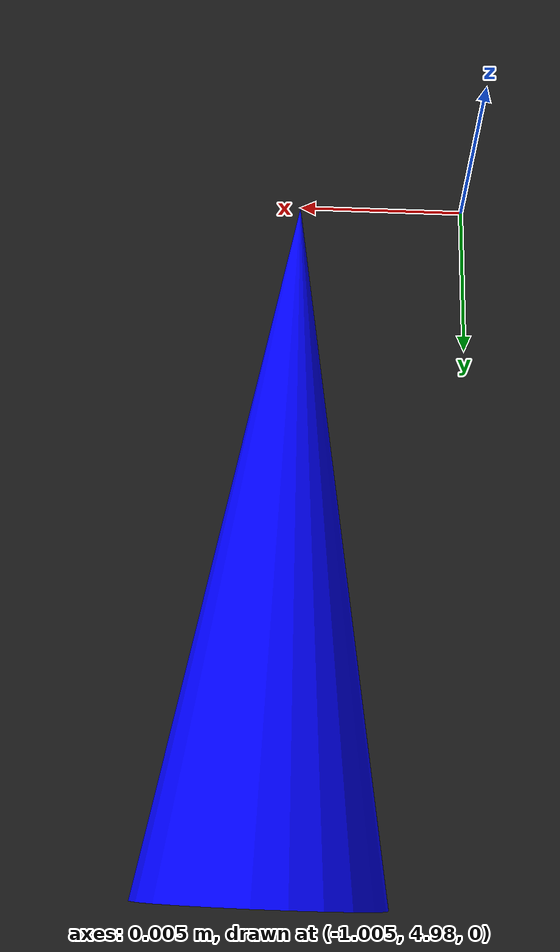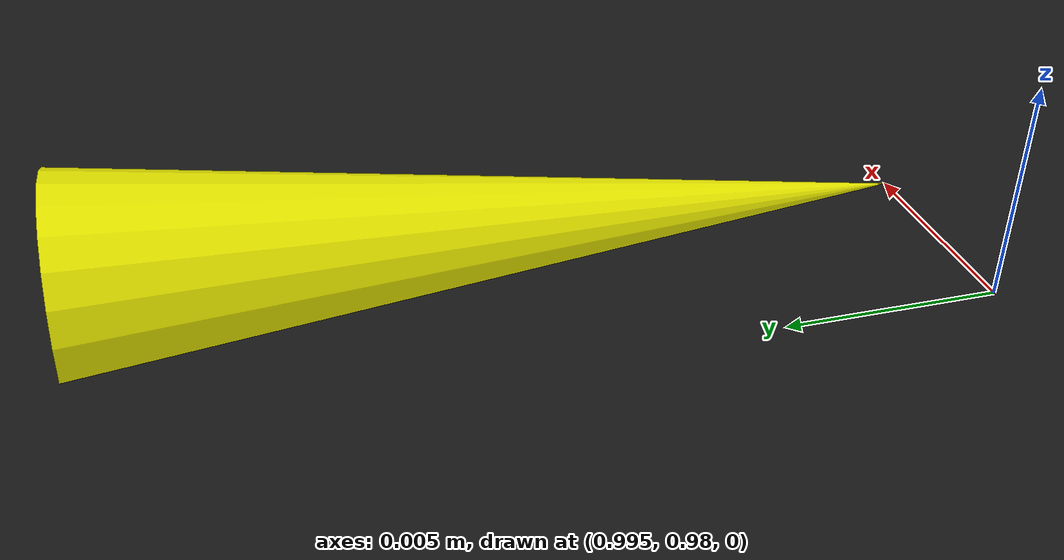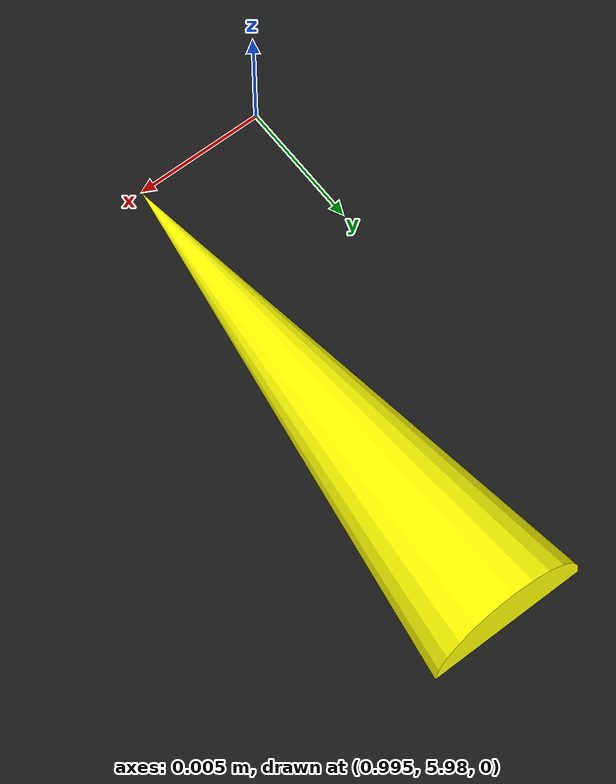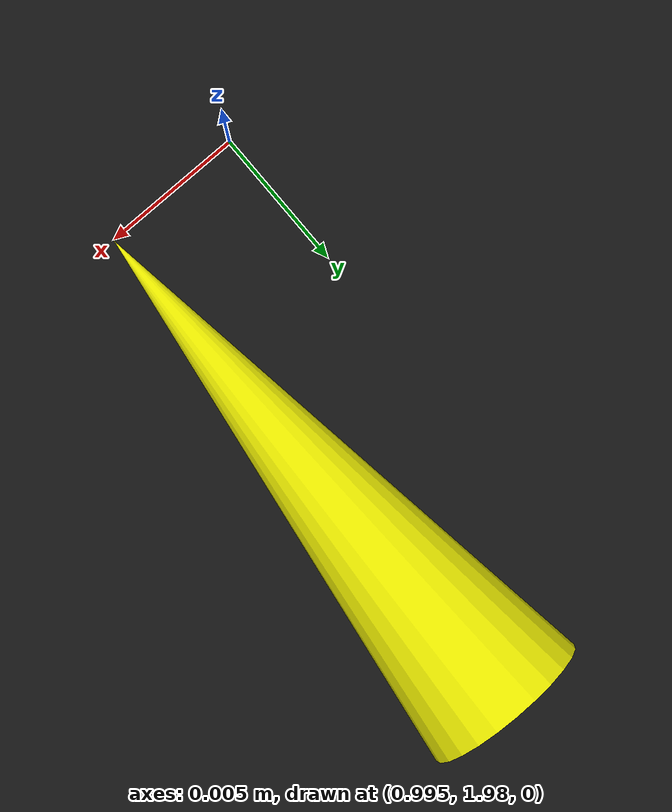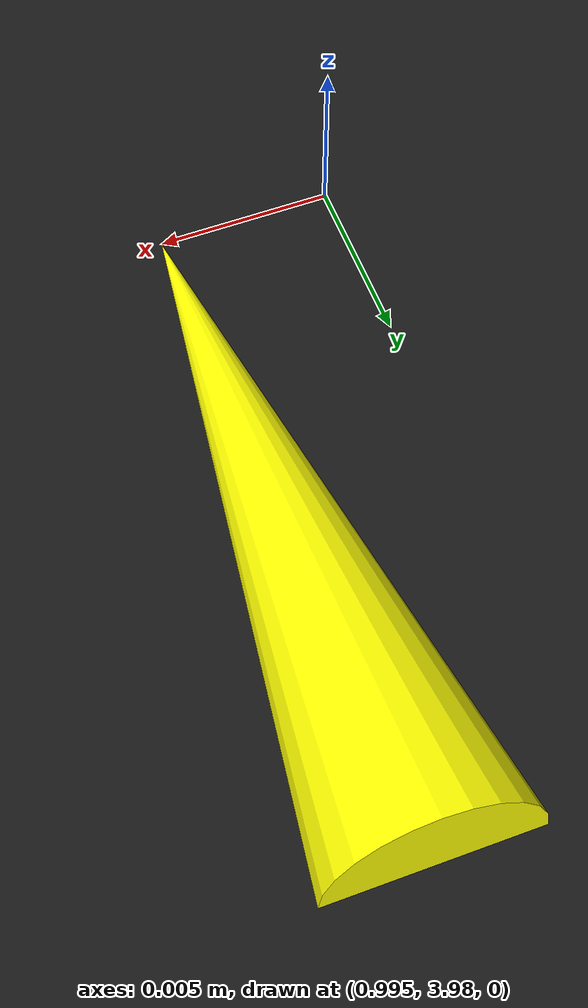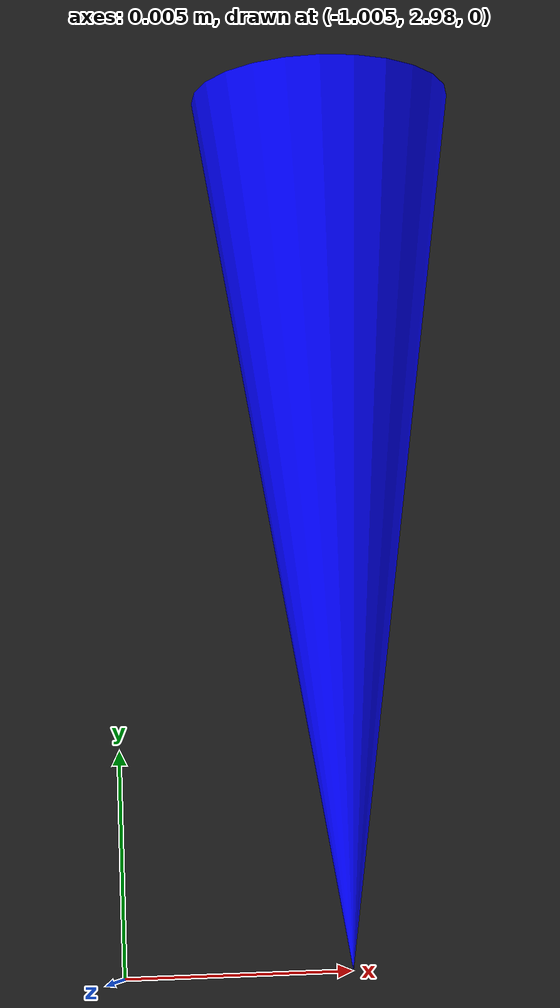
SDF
<?xml version="1.0"?>
  <sdf version='1.9'>
   <world name='track'>

        <!-- PHYSICS -->
        <physics name="1ms" type="ignored">
            <max_step_size>0.001</max_step_size>
            <real_time_factor>1.0</real_time_factor>
        </physics>

        <gravity>0 0 -9.8</gravity>
        <magnetic_field>6e-06 2.3e-05 -4.2e-05</magnetic_field>
        <atmosphere type='adiabatic'/>

        <!-- PLUGINS -->
        <plugin name='gz::sim::systems::Physics' filename='gz-sim-physics-system'/>
        <plugin name='gz::sim::systems::UserCommands' filename='gz-sim-user-commands-system'/>
        <plugin name='gz::sim::systems::SceneBroadcaster' filename='gz-sim-scene-broadcaster-system'/>

        <gui fullscreen='0'>
            <!-- 3D scene -->
            <plugin filename="MinimalScene" name="3D View">
                <gz-gui>
                <title>3D View</title>
                <property type="bool" key="showTitleBar">false</property>
                <property type="string" key="state">docked</property>
                </gz-gui>

                <engine>ogre2</engine>
                <scene>scene</scene>
                <ambient_light>0.4 0.4 0.4</ambient_light>
                <background_color>0.8 0.8 0.8</background_color>
                <camera_pose>-6 0 6 0 0.5 0</camera_pose>
            </plugin>

            <!-- Plugins that add functionality to the scene -->
            <plugin filename="EntityContextMenuPlugin" name="Entity context menu">
                <gz-gui>
                <property key="state" type="string">floating</property>
                <property key="width" type="double">5</property>
                <property key="height" type="double">5</property>
                <property key="showTitleBar" type="bool">false</property>
                </gz-gui>
            </plugin>
            <plugin filename="GzSceneManager" name="Scene Manager">
                <gz-gui>
                <property key="resizable" type="bool">false</property>
                <property key="width" type="double">5</property>
                <property key="height" type="double">5</property>
                <property key="state" type="string">floating</property>
                <property key="showTitleBar" type="bool">false</property>
                </gz-gui>
            </plugin>
            <plugin filename="InteractiveViewControl" name="Interactive view control">
                <gz-gui>
                <property key="resizable" type="bool">false</property>
                <property key="width" type="double">5</property>
                <property key="height" type="double">5</property>
                <property key="state" type="string">floating</property>
                <property key="showTitleBar" type="bool">false</property>
                </gz-gui>
            </plugin>
            <plugin filename="CameraTracking" name="Camera Tracking">
                <gz-gui>
                <property key="resizable" type="bool">false</property>
                <property key="width" type="double">5</property>
                <property key="height" type="double">5</property>
                <property key="state" type="string">floating</property>
                <property key="showTitleBar" type="bool">false</property>
                </gz-gui>
            </plugin>
            <plugin name='World control' filename='WorldControl'>
                <gz-gui>
                    <title>World control</title>
                    <property type='bool' key='showTitleBar'>0</property>
                    <property type='bool' key='resizable'>0</property>
                    <property type='double' key='height'>72</property>
                    <property type='double' key='z'>1</property>
                    <property type='string' key='state'>floating</property>
                    <anchors target='3D View'>
                        <line own='left' target='left'/>
                        <line own='bottom' target='bottom'/>
                    </anchors>
                </gz-gui>
                <play_pause>1</play_pause>
                <step>1</step>
                <start_paused>1</start_paused>
            </plugin>
            <plugin name='World stats' filename='WorldStats'>
                <gz-gui>
                    <title>World stats</title>
                    <property type='bool' key='showTitleBar'>0</property>
                    <property type='bool' key='resizable'>0</property>
                    <property type='double' key='height'>110</property>
                    <property type='double' key='width'>290</property>
                    <property type='double' key='z'>1</property>
                    <property type='string' key='state'>floating</property>
                    <anchors target='3D View'>
                        <line own='right' target='right'/>
                        <line own='bottom' target='bottom'/>
                    </anchors>
                </gz-gui>
                <sim_time>1</sim_time>
                <real_time>1</real_time>
                <real_time_factor>1</real_time_factor>
                <iterations>1</iterations>
            </plugin>

            <plugin filename="VisualizeLidar" name="Visualize Lidar">
            </plugin>

            <plugin filename="ImageDisplay" name="Image Display">
            </plugin>

            <!-- Inspector -->
            <plugin filename="ComponentInspector" name="Component inspector">
                <ignition-gui>
                <property type="string" key="state">docked</property>
                </ignition-gui>
            </plugin>

            <!-- Entity tree -->
            <plugin filename="EntityTree" name="Entity tree">
                <ignition-gui>
                <property type="string" key="state">docked</property>
                </ignition-gui>
            </plugin>
        </gui>

        <!-- SENSORS -->

        <plugin
        filename="gz-sim-sensors-system"
        name="gz::sim::systems::Sensors">
        <render_engine>ogre2</render_engine>
        </plugin>

        <!-- AMBIENT -->

        <scene>
            <ambient>1 1 1 1</ambient>
            <background>0.8 0.8 0.8 1</background>
            <shadows>1</shadows>
        </scene>
        <light name='sun' type='directional'>
            <cast_shadows>1</cast_shadows>
            <pose>0 0 10 0 0 0</pose>
            <diffuse>0.8 0.8 0.8 1</diffuse>
            <specular>0.8 0.8 0.8 1</specular>
            <attenuation>
                <range>1000</range>
                <constant>0.9</constant>
                <linear>0.01</linear>
                <quadratic>0.001</quadratic>
            </attenuation>
            <direction>-0.5 0.1 -0.9</direction>
        </light>

        <model name='ground_plane'>
            <static>true</static>
            <link name='link'>
                <collision name='collision'>
                    <geometry>
                        <plane>
                        <normal>0 0 1</normal>
                        <size>100 100</size>
                        </plane>
                    </geometry>

                    <surface>
                        <friction>
                            <dart/>
                        </friction>
                        <bounce/>
                        <contact/>
                    </surface>
                </collision>

                <visual name='visual'>
                    <geometry>
                        <plane>
                        <normal>0 0 1</normal>
                        <size>100 100</size>
                        </plane>
                    </geometry>
                    <material>
                        <ambient>0.1 0.1 0.1 1</ambient>
                        <diffuse>0.1 0.1 0.1 1</diffuse>
                        <specular>0.8 0.8 0.8 1</specular>
                    </material>
                </visual>

                <pose>0 0 0 0 -0 0</pose>

                <inertial>
                    <pose>0 0 0 0 -0 0</pose>
                    <mass>1</mass>
                    <inertia>
                        <ixx>1</ixx>
                        <ixy>0</ixy>
                        <ixz>0</ixz>
                        <iyy>1</iyy>
                        <iyz>0</iyz>
                        <izz>1</izz>
                    </inertia>
                </inertial>

                <enable_wind>false</enable_wind>

            </link>

            <pose>0 0 0 0 -0 0</pose>

            <self_collide>false</self_collide>
        </model>
     <model name='cone_0'>
      <link name='cone_0_link'>
        <inertial>
			<mass>0</mass>
			<inertia>
			<ixx>0.166667</ixx>
			<ixy>0</ixy>
			<ixz>0</ixz>
			<iyy>0.166667</iyy>
			<iyz>0</iyz>
			<izz>0.166667</izz>
			</inertia>
		</inertial>
        <collision name='cone_0_collision'>
          <geometry>
            <mesh>
              <uri>/models/cone/meshes/cone.stl</uri>
              <scale>0.001 0.001 0.001</scale>
            </mesh>
          </geometry>
        </collision>
        <visual name='cone_0_visual'>
          <geometry>
            <mesh>
              <uri>/models/cone/meshes/cone.stl</uri>
              <scale>0.001 0.001 0.001</scale>
            </mesh>
          </geometry>
          <material>
            <ambient>1 1 0 1</ambient>
            <diffuse>1 1 0 1</diffuse>
            <specular>1 1 0 1</specular>
          </material>
        </visual>

        <enable_wind>false</enable_wind>
      </link>
      <pose>1 0 0.0 1.57 0 0</pose>
      <static>true</static>
      </model>

     <model name='cone_1'>
      <link name='cone_1_link'>
        <inertial>
			<mass>0</mass>
			<inertia>
			<ixx>0.166667</ixx>
			<ixy>0</ixy>
			<ixz>0</ixz>
			<iyy>0.166667</iyy>
			<iyz>0</iyz>
			<izz>0.166667</izz>
			</inertia>
		</inertial>
        <collision name='cone_1_collision'>
          <geometry>
            <mesh>
              <uri>/models/cone/meshes/cone.stl</uri>
              <scale>0.001 0.001 0.001</scale>
            </mesh>
          </geometry>
        </collision>
        <visual name='cone_1_visual'>
          <geometry>
            <mesh>
              <uri>/models/cone/meshes/cone.stl</uri>
              <scale>0.001 0.001 0.001</scale>
            </mesh>
          </geometry>
          <material>
            <ambient>1 1 0 1</ambient>
            <diffuse>1 1 0 1</diffuse>
            <specular>1 1 0 1</specular>
          </material>
        </visual>

        <enable_wind>false</enable_wind>
      </link>
      <pose>1 1 0.0 1.57 0 0</pose>
      <static>true</static>
      </model>

     <model name='cone_2'>
      <link name='cone_2_link'>
        <inertial>
			<mass>0</mass>
			<inertia>
			<ixx>0.166667</ixx>
			<ixy>0</ixy>
			<ixz>0</ixz>
			<iyy>0.166667</iyy>
			<iyz>0</iyz>
			<izz>0.166667</izz>
			</inertia>
		</inertial>
        <collision name='cone_2_collision'>
          <geometry>
            <mesh>
              <uri>/models/cone/meshes/cone.stl</uri>
              <scale>0.001 0.001 0.001</scale>
            </mesh>
          </geometry>
        </collision>
        <visual name='cone_2_visual'>
          <geometry>
            <mesh>
              <uri>/models/cone/meshes/cone.stl</uri>
              <scale>0.001 0.001 0.001</scale>
            </mesh>
          </geometry>
          <material>
            <ambient>1 1 0 1</ambient>
            <diffuse>1 1 0 1</diffuse>
            <specular>1 1 0 1</specular>
          </material>
        </visual>

        <enable_wind>false</enable_wind>
      </link>
      <pose>1 2 0.0 1.57 0 0</pose>
      <static>true</static>
      </model>

     <model name='cone_3'>
      <link name='cone_3_link'>
        <inertial>
			<mass>0</mass>
			<inertia>
			<ixx>0.166667</ixx>
			<ixy>0</ixy>
			<ixz>0</ixz>
			<iyy>0.166667</iyy>
			<iyz>0</iyz>
			<izz>0.166667</izz>
			</inertia>
		</inertial>
        <collision name='cone_3_collision'>
          <geometry>
            <mesh>
              <uri>/models/cone/meshes/cone.stl</uri>
              <scale>0.001 0.001 0.001</scale>
            </mesh>
          </geometry>
        </collision>
        <visual name='cone_3_visual'>
          <geometry>
            <mesh>
              <uri>/models/cone/meshes/cone.stl</uri>
              <scale>0.001 0.001 0.001</scale>
            </mesh>
          </geometry>
          <material>
            <ambient>1 1 0 1</ambient>
            <diffuse>1 1 0 1</diffuse>
            <specular>1 1 0 1</specular>
          </material>
        </visual>

        <enable_wind>false</enable_wind>
      </link>
      <pose>1 3 0.0 1.57 0 0</pose>
      <static>true</static>
      </model>

     <model name='cone_4'>
      <link name='cone_4_link'>
        <inertial>
			<mass>0</mass>
			<inertia>
			<ixx>0.166667</ixx>
			<ixy>0</ixy>
			<ixz>0</ixz>
			<iyy>0.166667</iyy>
			<iyz>0</iyz>
			<izz>0.166667</izz>
			</inertia>
		</inertial>
        <collision name='cone_4_collision'>
          <geometry>
            <mesh>
              <uri>/models/cone/meshes/cone.stl</uri>
              <scale>0.001 0.001 0.001</scale>
            </mesh>
          </geometry>
        </collision>
        <visual name='cone_4_visual'>
          <geometry>
            <mesh>
              <uri>/models/cone/meshes/cone.stl</uri>
              <scale>0.001 0.001 0.001</scale>
            </mesh>
          </geometry>
          <material>
            <ambient>1 1 0 1</ambient>
            <diffuse>1 1 0 1</diffuse>
            <specular>1 1 0 1</specular>
          </material>
        </visual>

        <enable_wind>false</enable_wind>
      </link>
      <pose>1 4 0.0 1.57 0 0</pose>
      <static>true</static>
      </model>

      <model name='cone_5'>
      <link name='cone_5_link'>
        <inertial>
			<mass>0</mass>
			<inertia>
			<ixx>0.166667</ixx>
			<ixy>0</ixy>
			<ixz>0</ixz>
			<iyy>0.166667</iyy>
			<iyz>0</iyz>
			<izz>0.166667</izz>
			</inertia>
		</inertial>
        <collision name='cone_5_collision'>
          <geometry>
            <mesh>
              <uri>/models/cone/meshes/cone.stl</uri>
              <scale>0.001 0.001 0.001</scale>
            </mesh>
          </geometry>
        </collision>
        <visual name='cone_5_visual'>
          <geometry>
            <mesh>
              <uri>/models/cone/meshes/cone.stl</uri>
              <scale>0.001 0.001 0.001</scale>
            </mesh>
          </geometry>
          <material>
            <ambient>1 1 0 1</ambient>
            <diffuse>1 1 0 1</diffuse>
            <specular>1 1 0 1</specular>
          </material>
        </visual>

        <enable_wind>false</enable_wind>
      </link>
      <pose>1 5 0.0 1.57 0 0</pose>
      <static>true</static>
      </model>

      <model name='cone_6'>
      <link name='cone_6_link'>
        <inertial>
			<mass>0</mass>
			<inertia>
			<ixx>0.166667</ixx>
			<ixy>0</ixy>
			<ixz>0</ixz>
			<iyy>0.166667</iyy>
			<iyz>0</iyz>
			<izz>0.166667</izz>
			</inertia>
		</inertial>
        <collision name='cone_6_collision'>
          <geometry>
            <mesh>
              <uri>/models/cone/meshes/cone.stl</uri>
              <scale>0.001 0.001 0.001</scale>
            </mesh>
          </geometry>
        </collision>
        <visual name='cone_6_visual'>
          <geometry>
            <mesh>
              <uri>/models/cone/meshes/cone.stl</uri>
              <scale>0.001 0.001 0.001</scale>
            </mesh>
          </geometry>
          <material>
            <ambient>1 1 0 1</ambient>
            <diffuse>1 1 0 1</diffuse>
            <specular>1 1 0 1</specular>
          </material>
        </visual>

        <enable_wind>false</enable_wind>
      </link>
      <pose>1 6 0.0 1.57 0 0</pose>
      <static>true</static>
      </model>

     <model name='cone_77'>
      <link name='cone_77_link'>
        <inertial>
			<mass>0</mass>
			<inertia>
			<ixx>0.166667</ixx>
			<ixy>0</ixy>
			<ixz>0</ixz>
			<iyy>0.166667</iyy>
			<iyz>0</iyz>
			<izz>0.166667</izz>
			</inertia>
		</inertial>
        <collision name='cone_77_collision'>
          <geometry>
            <mesh>
              <uri>/models/cone/meshes/cone.stl</uri>
              <scale>0.001 0.001 0.001</scale>
            </mesh>
          </geometry>
        </collision>
        <visual name='cone_77_visual'>
          <geometry>
            <mesh>
              <uri>/models/cone/meshes/cone.stl</uri>
              <scale>0.001 0.001 0.001</scale>
            </mesh>
          </geometry>
          <material>
            <ambient>0 0 1 1</ambient>
            <diffuse>0 0 1 1</diffuse>
            <specular>0 0 1 1</specular>
          </material>
        </visual>

        <enable_wind>false</enable_wind>
      </link>
      <pose>-1 0 0.0 1.57 0 0</pose>
      <static>true</static>
      </model>

     <model name='cone_78'>
      <link name='cone_78_link'>
        <inertial>
			<mass>0</mass>
			<inertia>
			<ixx>0.166667</ixx>
			<ixy>0</ixy>
			<ixz>0</ixz>
			<iyy>0.166667</iyy>
			<iyz>0</iyz>
			<izz>0.166667</izz>
			</inertia>
		</inertial>
        <collision name='cone_78_collision'>
          <geometry>
            <mesh>
              <uri>/models/cone/meshes/cone.stl</uri>
              <scale>0.001 0.001 0.001</scale>
            </mesh>
          </geometry>
        </collision>
        <visual name='cone_78_visual'>
          <geometry>
            <mesh>
              <uri>/models/cone/meshes/cone.stl</uri>
              <scale>0.001 0.001 0.001</scale>
            </mesh>
          </geometry>
          <material>
            <ambient>0 0 1 1</ambient>
            <diffuse>0 0 1 1</diffuse>
            <specular>0 0 1 1</specular>
          </material>
        </visual>

        <enable_wind>false</enable_wind>
      </link>
      <pose>-1 1 0.0 1.57 0 0</pose>
      <static>true</static>
      </model>

     <model name='cone_79'>
      <link name='cone_79_link'>
        <inertial>
			<mass>0</mass>
			<inertia>
			<ixx>0.166667</ixx>
			<ixy>0</ixy>
			<ixz>0</ixz>
			<iyy>0.166667</iyy>
			<iyz>0</iyz>
			<izz>0.166667</izz>
			</inertia>
		</inertial>
        <collision name='cone_79_collision'>
          <geometry>
            <mesh>
              <uri>/models/cone/meshes/cone.stl</uri>
              <scale>0.001 0.001 0.001</scale>
            </mesh>
          </geometry>
        </collision>
        <visual name='cone_79_visual'>
          <geometry>
            <mesh>
              <uri>/models/cone/meshes/cone.stl</uri>
              <scale>0.001 0.001 0.001</scale>
            </mesh>
          </geometry>
          <material>
            <ambient>0 0 1 1</ambient>
            <diffuse>0 0 1 1</diffuse>
            <specular>0 0 1 1</specular>
          </material>
        </visual>

        <enable_wind>false</enable_wind>
      </link>
      <pose>-1 2 0.0 1.57 0 0</pose>
      <static>true</static>
      </model>

     <model name='cone_80'>
      <link name='cone_80_link'>
        <inertial>
			<mass>0</mass>
			<inertia>
			<ixx>0.166667</ixx>
			<ixy>0</ixy>
			<ixz>0</ixz>
			<iyy>0.166667</iyy>
			<iyz>0</iyz>
			<izz>0.166667</izz>
			</inertia>
		</inertial>
        <collision name='cone_80_collision'>
          <geometry>
            <mesh>
              <uri>/models/cone/meshes/cone.stl</uri>
              <scale>0.001 0.001 0.001</scale>
            </mesh>
          </geometry>
        </collision>
        <visual name='cone_80_visual'>
          <geometry>
            <mesh>
              <uri>/models/cone/meshes/cone.stl</uri>
              <scale>0.001 0.001 0.001</scale>
            </mesh>
          </geometry>
          <material>
            <ambient>0 0 1 1</ambient>
            <diffuse>0 0 1 1</diffuse>
            <specular>0 0 1 1</specular>
          </material>
        </visual>

        <enable_wind>false</enable_wind>
      </link>
      <pose>-1 3 0.0 1.57 0 0</pose>
      <static>true</static>
      </model>

     <model name='cone_81'>
      <link name='cone_81_link'>
        <inertial>
			<mass>0</mass>
			<inertia>
			<ixx>0.166667</ixx>
			<ixy>0</ixy>
			<ixz>0</ixz>
			<iyy>0.166667</iyy>
			<iyz>0</iyz>
			<izz>0.166667</izz>
			</inertia>
		</inertial>
        <collision name='cone_81_collision'>
          <geometry>
            <mesh>
              <uri>/models/cone/meshes/cone.stl</uri>
              <scale>0.001 0.001 0.001</scale>
            </mesh>
          </geometry>
        </collision>
        <visual name='cone_81_visual'>
          <geometry>
            <mesh>
              <uri>/models/cone/meshes/cone.stl</uri>
              <scale>0.001 0.001 0.001</scale>
            </mesh>
          </geometry>
          <material>
            <ambient>0 0 1 1</ambient>
            <diffuse>0 0 1 1</diffuse>
            <specular>0 0 1 1</specular>
          </material>
        </visual>

        <enable_wind>false</enable_wind>
      </link>
      <pose>-1 4 0.0 1.57 0 0</pose>
      <static>true</static>
      </model>

     <model name='cone_82'>
      <link name='cone_82_link'>
        <inertial>
			<mass>0</mass>
			<inertia>
			<ixx>0.166667</ixx>
			<ixy>0</ixy>
			<ixz>0</ixz>
			<iyy>0.166667</iyy>
			<iyz>0</iyz>
			<izz>0.166667</izz>
			</inertia>
		</inertial>
        <collision name='cone_82_collision'>
          <geometry>
            <mesh>
              <uri>/models/cone/meshes/cone.stl</uri>
              <scale>0.001 0.001 0.001</scale>
            </mesh>
          </geometry>
        </collision>
        <visual name='cone_82_visual'>
          <geometry>
            <mesh>
              <uri>/models/cone/meshes/cone.stl</uri>
              <scale>0.001 0.001 0.001</scale>
            </mesh>
          </geometry>
          <material>
            <ambient>0 0 1 1</ambient>
            <diffuse>0 0 1 1</diffuse>
            <specular>0 0 1 1</specular>
          </material>
        </visual>

        <enable_wind>false</enable_wind>
      </link>
      <pose>-1 5 0.0 1.57 0 0</pose>
      <static>true</static>
      </model>

      <model name='cone_83'>
      <link name='cone_83_link'>
        <inertial>
			<mass>0</mass>
			<inertia>
			<ixx>0.166667</ixx>
			<ixy>0</ixy>
			<ixz>0</ixz>
			<iyy>0.166667</iyy>
			<iyz>0</iyz>
			<izz>0.166667</izz>
			</inertia>
		</inertial>
        <collision name='cone_83_collision'>
          <geometry>
            <mesh>
              <uri>/models/cone/meshes/cone.stl</uri>
              <scale>0.001 0.001 0.001</scale>
            </mesh>
          </geometry>
        </collision>
        <visual name='cone_83_visual'>
          <geometry>
            <mesh>
              <uri>/models/cone/meshes/cone.stl</uri>
              <scale>0.001 0.001 0.001</scale>
            </mesh>
          </geometry>
          <material>
            <ambient>0 0 1 1</ambient>
            <diffuse>0 0 1 1</diffuse>
            <specular>0 0 1 1</specular>
          </material>
        </visual>

        <enable_wind>false</enable_wind>
      </link>
      <pose>-1 6 0.0 1.57 0 0</pose>
      <static>true</static>
      </model>

  </world>
  </sdf>
